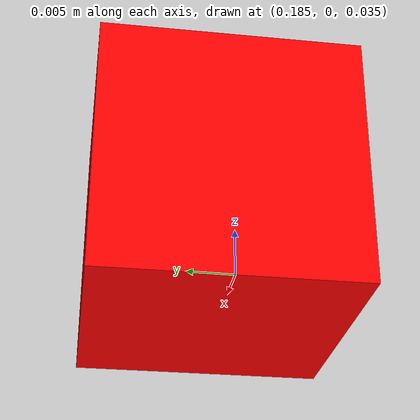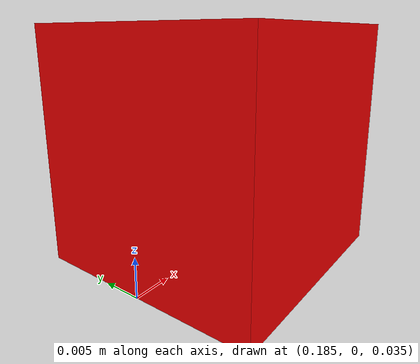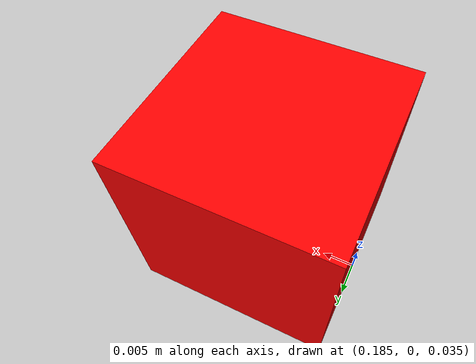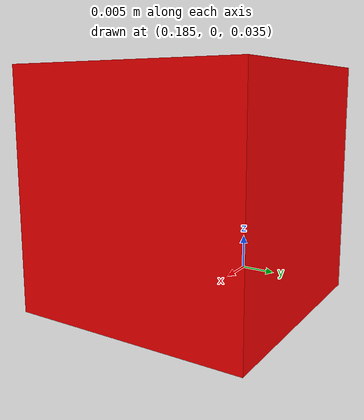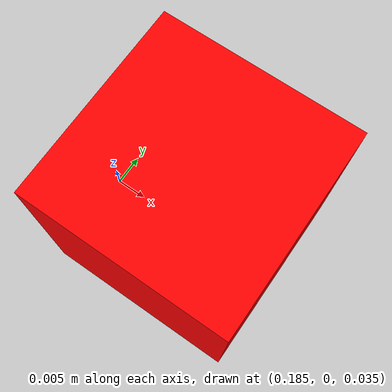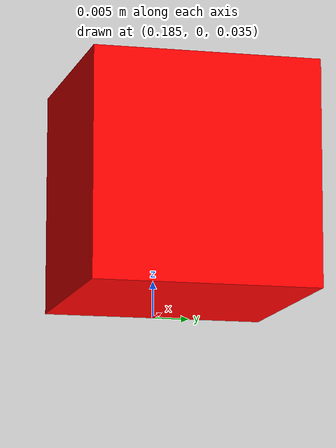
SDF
<?xml version="1.0" ?>
    <sdf version="1.6">
      <model name="pick_cube">
        <pose>0.2 0.0 0.05 0 0 0</pose>
        <link name="link">
          <inertial>
            <mass>0.05</mass>
            <inertia>
              <ixx>0.0001</ixx><ixy>0</ixy><ixz>0</ixz>
              <iyy>0.0001</iyy><iyz>0</iyz>
              <izz>0.0001</izz>
            </inertia>
          </inertial>
          <visual name="visual">
            <geometry>
              <box>
                <size>0.03 0.03 0.03</size>
              </box>
            </geometry>
            <material>
              <ambient>1 0 0 1</ambient>
              <diffuse>1 0 0 1</diffuse>
            </material>
          </visual>
          <collision name="collision">
            <geometry>
              <box>
                <size>0.03 0.03 0.03</size>
              </box>
            </geometry>
            <surface>
              <friction>
                <ode>
                  <mu>100.0</mu>
                  <mu2>100.0</mu2>
                </ode>
              </friction>
              <contact>
                <ode>
                  <kp>1000000.0</kp>
                  <kd>1.0</kd>
                </ode>
              </contact>
            </surface>
          </collision>
        </link>
      </model>
    </sdf>
